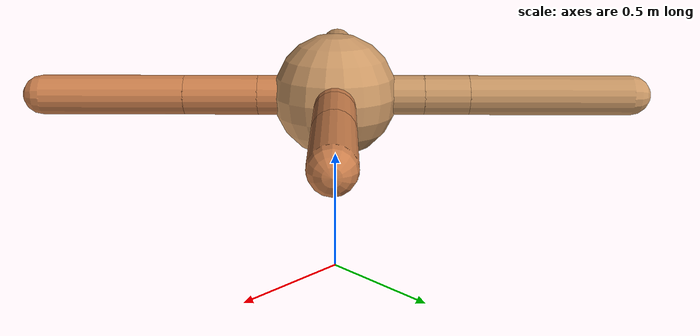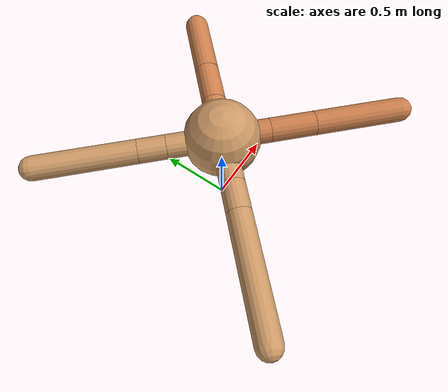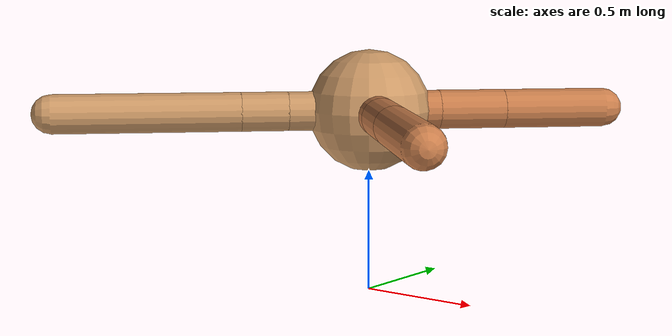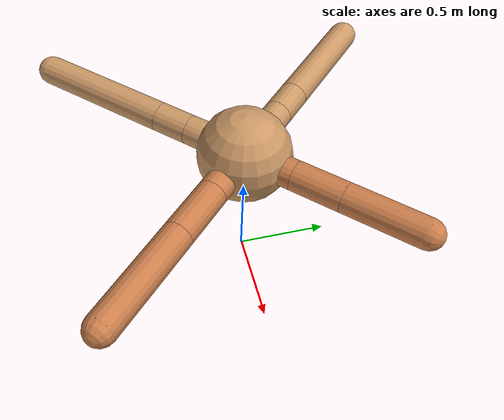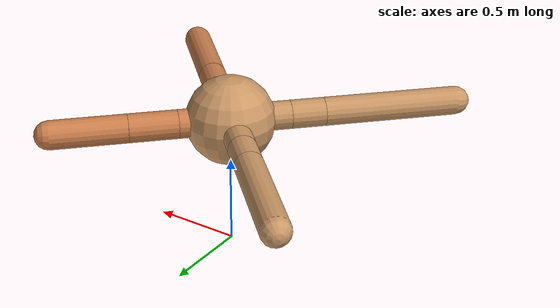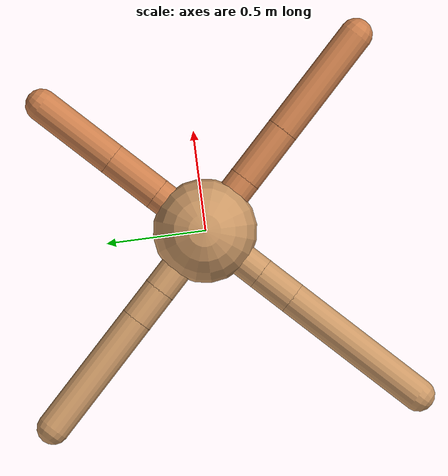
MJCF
<mujoco model="ant">
  <compiler angle="degree" coordinate="local" inertiafromgeom="true" />
  <option integrator="RK4" timestep="0.01" />
  <custom>
    <numeric data="0.0 0.0 0.55 1.0 0.0 0.0 0.0 0.0 1.0 0.0 -1.0 0.0 -1.0 0.0 1.0" name="init_qpos" />
  </custom>
  <default>
    <joint armature="1" damping="1" limited="true" />
    <geom conaffinity="0" condim="3" density="5.0" friction="1.5 0.1 0.1" margin="0.01" rgba="0.8 0.6 0.4 1" />
  </default>
  <worldbody>
    <body name="torso" pos="0 0 0.75">
      <geom name="torso_geom" pos="0 0 0" size="0.25" type="sphere" />

      <body name="front_left_leg" pos="0 0 0">
        <geom fromto="0.0 0.0 0.0 0.20483225020635754 0.20483225020635754 0.0" name="aux_1_geom" size="0.08" type="capsule" rgba=".8 .5 .3 1" />
        <body name="aux_1" pos="0.20483225020635754 0.20483225020635754 0.0">
          <joint axis="0 0 1" name="hip_1" pos="0.0 0.0 0.0" range="-40 40" type="hinge" />
          <geom fromto="0.0 0.0 0.0 0.19238549067040558 0.19238549067040558 0.0" name="left_leg_geom" size="0.08" type="capsule" rgba=".8 .5 .3 1" />
          <body pos="0.19238549067040558 0.19238549067040558 0.0" name="front_left_foot">
            <joint axis="-1 1 0" name="ankle_1" pos="0.0 0.0 0.0" range="30 100" type="hinge" />
            <geom fromto="0.0 0.0 0.0 0.29938420424444806 0.29938420424444806 0.0" name="left_ankle_geom" size="0.08" type="capsule" rgba=".8 .5 .3 1" />
          </body>
        </body>
      </body>
      <body name="front_right_leg" pos="0 0 0">
        <geom fromto="0.0 0.0 0.0 -0.2523170945458837 0.2523170945458837 0.0" name="aux_2_geom" size="0.08" type="capsule" />
        <body name="aux_2" pos="-0.2523170945458837 0.2523170945458837 0.0">
          <joint axis="0 0 1" name="hip_2" pos="0.0 0.0 0.0" range="-40 40" type="hinge" />
          <geom fromto="0.0 0.0 0.0 -0.1276149316831379 0.1276149316831379 0.0" name="right_leg_geom" size="0.08" type="capsule" />
          <body pos="-0.1276149316831379 0.1276149316831379 0.0" name="front_right_foot">
            <joint axis="1 1 0" name="ankle_2" pos="0.0 0.0 0.0" range="-100 -30" type="hinge" />
            <geom fromto="0.0 0.0 0.0 -0.46160510928172027 0.46160510928172027 0.0" name="right_ankle_geom" size="0.08" type="capsule" />
          </body>
        </body>
      </body>
      <body name="left_back_leg" pos="0 0 0">
        <geom fromto="0.0 0.0 0.0 -0.23722057267569127 -0.23722057267569127 0.0" name="aux_3_geom" size="0.08" type="capsule" />
        <body name="aux_3" pos="-0.23722057267569127 -0.23722057267569127 0.0">
          <joint axis="0 0 1" name="hip_3" pos="0.0 0.0 0.0" range="-40 40" type="hinge" />
          <geom fromto="0.0 0.0 0.0 -0.13509676422438668 -0.13509676422438668 0.0" name="back_leg_geom" size="0.08" type="capsule" />
          <body pos="-0.13509676422438668 -0.13509676422438668 0.0" name="left_back_foot">
            <joint axis="-1 1 0" name="ankle_3" pos="0.0 0.0 0.0" range="-100 -30" type="hinge" />
            <geom fromto="0.0 0.0 0.0 -0.5377575767783378 -0.5377575767783378 0.0" name="third_ankle_geom" size="0.08" type="capsule" />
          </body>
        </body>
      </body>
      <body name="right_back_leg" pos="0 0 0">
        <geom fromto="0.0 0.0 0.0 0.22050295376362686 -0.22050295376362686 0.0" name="aux_4_geom" size="0.08" type="capsule" rgba=".8 .5 .3 1" />
        <body name="aux_4" pos="0.22050295376362686 -0.22050295376362686 0.0">
          <joint axis="0 0 1" name="hip_4" pos="0.0 0.0 0.0" range="-40 40" type="hinge" />
          <geom fromto="0.0 0.0 0.0 0.20943567830473697 -0.20943567830473697 0.0" name="rightback_leg_geom" size="0.08" type="capsule" rgba=".8 .5 .3 1" />
          <body pos="0.20943567830473697 -0.20943567830473697 0.0" name="right_back_foot">
            <joint axis="1 1 0" name="ankle_4" pos="0.0 0.0 0.0" range="30 100" type="hinge" />
            <geom fromto="0.0 0.0 0.0 0.4073269455502261 -0.4073269455502261 0.0" name="fourth_ankle_geom" size="0.08" type="capsule" rgba=".8 .5 .3 1" />
          </body>
        </body>
      </body>
    </body>
  </worldbody>
  <actuator>
    <motor ctrllimited="true" ctrlrange="-1.0 1.0" joint="hip_4" gear="150" />
    <motor ctrllimited="true" ctrlrange="-1.0 1.0" joint="ankle_4" gear="150" />
    <motor ctrllimited="true" ctrlrange="-1.0 1.0" joint="hip_1" gear="150" />
    <motor ctrllimited="true" ctrlrange="-1.0 1.0" joint="ankle_1" gear="150" />
    <motor ctrllimited="true" ctrlrange="-1.0 1.0" joint="hip_2" gear="150" />
    <motor ctrllimited="true" ctrlrange="-1.0 1.0" joint="ankle_2" gear="150" />
    <motor ctrllimited="true" ctrlrange="-1.0 1.0" joint="hip_3" gear="150" />
    <motor ctrllimited="true" ctrlrange="-1.0 1.0" joint="ankle_3" gear="150" />
  </actuator>
</mujoco>
